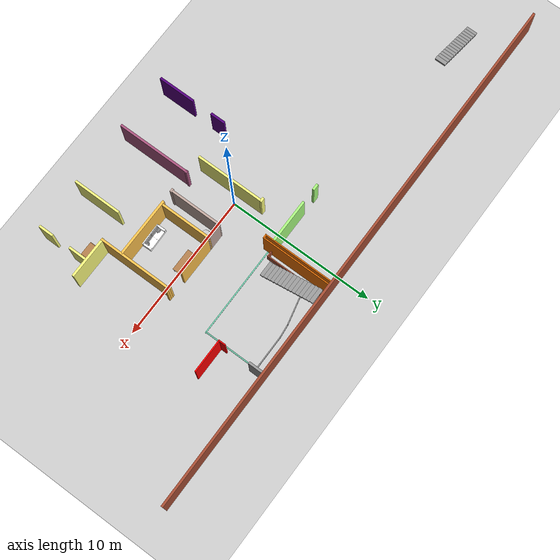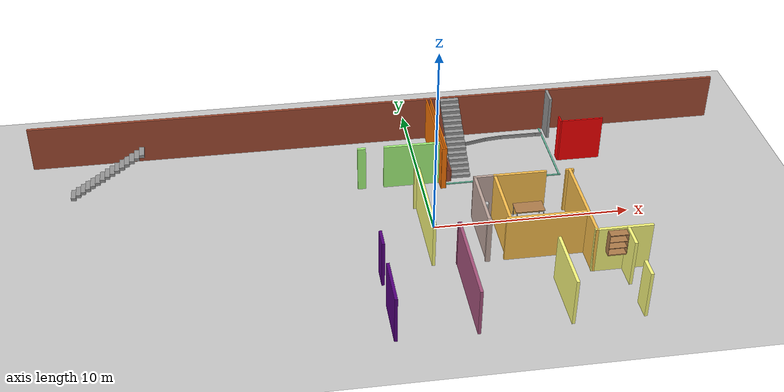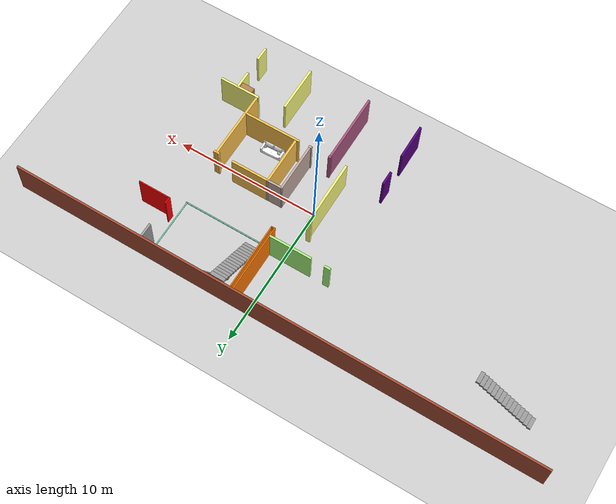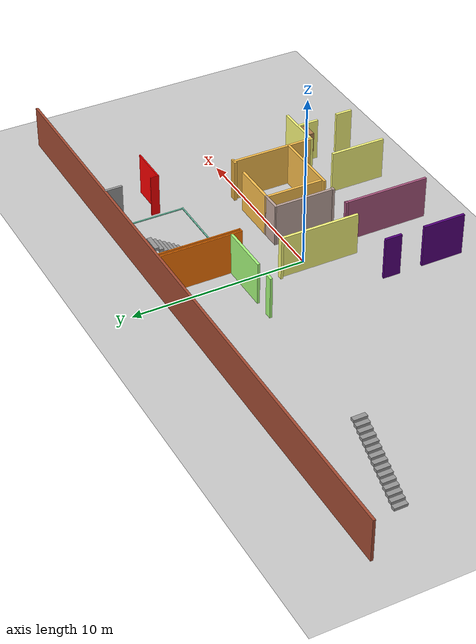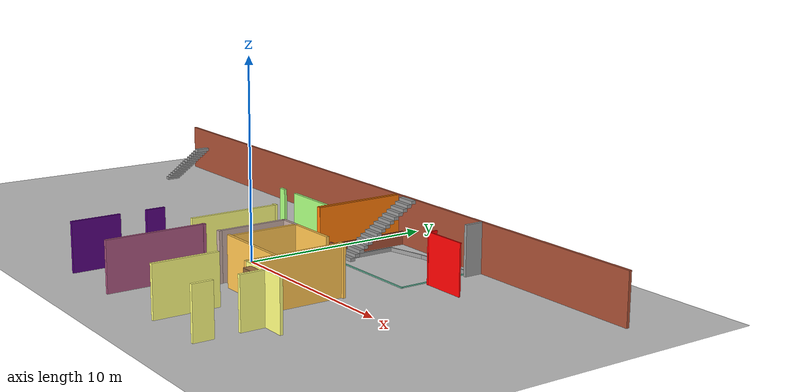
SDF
<sdf version="1.7">
 <world name="default">
  <model name="ground_plane">
   <static>1</static>
   <link name="link">
    <collision name="collision">
     <geometry><plane><normal>0 0 1</normal><size>100 100</size></plane></geometry>
     <surface>
      <contact><collide_bitmask>65535</collide_bitmask></contact>
      <friction><ode><mu>100</mu><mu2>50</mu2></ode></friction>
     </surface>
    </collision>
    <visual name="visual">
     <cast_shadows>0</cast_shadows>
     <geometry><plane><normal>0 0 1</normal><size>100 100</size></plane></geometry>
     <material>
      <script><uri>file://media/materials/scripts/gazebo.material</uri><name>Gazebo/Grey</name></script>
     </material>
    </visual>
   </link>
  </model>
  <model name="finalfinal">
   <pose>-1.52945 0.041943 0 0 -0 0</pose>
   <link name="Stairs_0">
    <visual name="Stairs_0_Visual_0">
     <pose>-16.4011 5.10556 0.083333 0 -0 1.5708</pose>
     <geometry><box><size>0.747 0.265533 0.166667</size></box></geometry>
     <material>
      <script><uri>file://media/materials/scripts/gazebo.material</uri><name>Gazebo/Grey</name></script>
      <ambient>1 1 1 1</ambient>
     </material>
     <meta><layer>0</layer></meta>
    </visual>
    <collision name="Stairs_0_Collision_0">
     <geometry><box><size>0.747 0.265533 0.166667</size></box></geometry>
     <pose>-16.4011 5.10556 0.083333 0 -0 1.5708</pose>
    </collision>
    <visual name="Stairs_0_Visual_1">
     <pose>-16.1355 5.10556 0.25 0 -0 1.5708</pose>
     <geometry><box><size>0.747 0.265533 0.166667</size></box></geometry>
     <material>
      <script><uri>file://media/materials/scripts/gazebo.material</uri><name>Gazebo/Grey</name></script>
      <ambient>1 1 1 1</ambient>
     </material>
     <meta><layer>0</layer></meta>
    </visual>
    <collision name="Stairs_0_Collision_1">
     <geometry><box><size>0.747 0.265533 0.166667</size></box></geometry>
     <pose>-16.1355 5.10556 0.25 0 -0 1.5708</pose>
    </collision>
    <visual name="Stairs_0_Visual_2">
     <pose>-15.87 5.10556 0.416667 0 -0 1.5708</pose>
     <geometry><box><size>0.747 0.265533 0.166667</size></box></geometry>
     <material>
      <script><uri>file://media/materials/scripts/gazebo.material</uri><name>Gazebo/Grey</name></script>
      <ambient>1 1 1 1</ambient>
     </material>
     <meta><layer>0</layer></meta>
    </visual>
    <collision name="Stairs_0_Collision_2">
     <geometry><box><size>0.747 0.265533 0.166667</size></box></geometry>
     <pose>-15.87 5.10556 0.416667 0 -0 1.5708</pose>
    </collision>
    <visual name="Stairs_0_Visual_3">
     <pose>-15.6045 5.10556 0.583333 0 -0 1.5708</pose>
     <geometry><box><size>0.747 0.265533 0.166667</size></box></geometry>
     <material>
      <script><uri>file://media/materials/scripts/gazebo.material</uri><name>Gazebo/Grey</name></script>
      <ambient>1 1 1 1</ambient>
     </material>
     <meta><layer>0</layer></meta>
    </visual>
    <collision name="Stairs_0_Collision_3">
     <geometry><box><size>0.747 0.265533 0.166667</size></box></geometry>
     <pose>-15.6045 5.10556 0.583333 0 -0 1.5708</pose>
    </collision>
    <visual name="Stairs_0_Visual_4">
     <pose>-15.3389 5.10556 0.75 0 -0 1.5708</pose>
     <geometry><box><size>0.747 0.265533 0.166667</size></box></geometry>
     <material>
      <script><uri>file://media/materials/scripts/gazebo.material</uri><name>Gazebo/Grey</name></script>
      <ambient>1 1 1 1</ambient>
     </material>
     <meta><layer>0</layer></meta>
    </visual>
    <collision name="Stairs_0_Collision_4">
     <geometry><box><size>0.747 0.265533 0.166667</size></box></geometry>
     <pose>-15.3389 5.10556 0.75 0 -0 1.5708</pose>
    </collision>
    <visual name="Stairs_0_Visual_5">
     <pose>-15.0734 5.10556 0.916667 0 -0 1.5708</pose>
     <geometry><box><size>0.747 0.265533 0.166667</size></box></geometry>
     <material>
      <script><uri>file://media/materials/scripts/gazebo.material</uri><name>Gazebo/Grey</name></script>
      <ambient>1 1 1 1</ambient>
     </material>
     <meta><layer>0</layer></meta>
    </visual>
    <collision name="Stairs_0_Collision_5">
     <geometry><box><size>0.747 0.265533 0.166667</size></box></geometry>
     <pose>-15.0734 5.10556 0.916667 0 -0 1.5708</pose>
    </collision>
    <visual name="Stairs_0_Visual_6">
     <pose>-14.8079 5.10556 1.08333 0 -0 1.5708</pose>
     <geometry><box><size>0.747 0.265533 0.166667</size></box></geometry>
     <material>
      <script><uri>file://media/materials/scripts/gazebo.material</uri><name>Gazebo/Grey</name></script>
      <ambient>1 1 1 1</ambient>
     </material>
     <meta><layer>0</layer></meta>
    </visual>
    <collision name="Stairs_0_Collision_6">
     <geometry><box><size>0.747 0.265533 0.166667</size></box></geometry>
     <pose>-14.8079 5.10556 1.08333 0 -0 1.5708</pose>
    </collision>
    <visual name="Stairs_0_Visual_7">
     <pose>-14.5423 5.10556 1.25 0 -0 1.5708</pose>
     <geometry><box><size>0.747 0.265533 0.166667</size></box></geometry>
     <material>
      <script><uri>file://media/materials/scripts/gazebo.material</uri><name>Gazebo/Grey</name></script>
      <ambient>1 1 1 1</ambient>
     </material>
     <meta><layer>0</layer></meta>
    </visual>
    <collision name="Stairs_0_Collision_7">
     <geometry><box><size>0.747 0.265533 0.166667</size></box></geometry>
     <pose>-14.5423 5.10556 1.25 0 -0 1.5708</pose>
    </collision>
    <visual name="Stairs_0_Visual_8">
     <pose>-14.2768 5.10556 1.41667 0 -0 1.5708</pose>
     <geometry><box><size>0.747 0.265533 0.166667</size></box></geometry>
     <material>
      <script><uri>file://media/materials/scripts/gazebo.material</uri><name>Gazebo/Grey</name></script>
      <ambient>1 1 1 1</ambient>
     </material>
     <meta><layer>0</layer></meta>
    </visual>
    <collision name="Stairs_0_Collision_8">
     <geometry><box><size>0.747 0.265533 0.166667</size></box></geometry>
     <pose>-14.2768 5.10556 1.41667 0 -0 1.5708</pose>
    </collision>
    <visual name="Stairs_0_Visual_9">
     <pose>-14.0113 5.10556 1.58333 0 -0 1.5708</pose>
     <geometry><box><size>0.747 0.265533 0.166667</size></box></geometry>
     <material>
      <script><uri>file://media/materials/scripts/gazebo.material</uri><name>Gazebo/Grey</name></script>
      <ambient>1 1 1 1</ambient>
     </material>
     <meta><layer>0</layer></meta>
    </visual>
    <collision name="Stairs_0_Collision_9">
     <geometry><box><size>0.747 0.265533 0.166667</size></box></geometry>
     <pose>-14.0113 5.10556 1.58333 0 -0 1.5708</pose>
    </collision>
    <visual name="Stairs_0_Visual_10">
     <pose>-13.7457 5.10556 1.75 0 -0 1.5708</pose>
     <geometry><box><size>0.747 0.265533 0.166667</size></box></geometry>
     <material>
      <script><uri>file://media/materials/scripts/gazebo.material</uri><name>Gazebo/Grey</name></script>
      <ambient>1 1 1 1</ambient>
     </material>
     <meta><layer>0</layer></meta>
    </visual>
    <collision name="Stairs_0_Collision_10">
     <geometry><box><size>0.747 0.265533 0.166667</size></box></geometry>
     <pose>-13.7457 5.10556 1.75 0 -0 1.5708</pose>
    </collision>
    <visual name="Stairs_0_Visual_11">
     <pose>-13.4802 5.10556 1.91667 0 -0 1.5708</pose>
     <geometry><box><size>0.747 0.265533 0.166667</size></box></geometry>
     <material>
      <script><uri>file://media/materials/scripts/gazebo.material</uri><name>Gazebo/Grey</name></script>
      <ambient>1 1 1 1</ambient>
     </material>
     <meta><layer>0</layer></meta>
    </visual>
    <collision name="Stairs_0_Collision_11">
     <geometry><box><size>0.747 0.265533 0.166667</size></box></geometry>
     <pose>-13.4802 5.10556 1.91667 0 -0 1.5708</pose>
    </collision>
    <visual name="Stairs_0_Visual_12">
     <pose>-13.2147 5.10556 2.08333 0 -0 1.5708</pose>
     <geometry><box><size>0.747 0.265533 0.166667</size></box></geometry>
     <material>
      <script><uri>file://media/materials/scripts/gazebo.material</uri><name>Gazebo/Grey</name></script>
      <ambient>1 1 1 1</ambient>
     </material>
     <meta><layer>0</layer></meta>
    </visual>
    <collision name="Stairs_0_Collision_12">
     <geometry><box><size>0.747 0.265533 0.166667</size></box></geometry>
     <pose>-13.2147 5.10556 2.08333 0 -0 1.5708</pose>
    </collision>
    <visual name="Stairs_0_Visual_13">
     <pose>-12.9491 5.10556 2.25 0 -0 1.5708</pose>
     <geometry><box><size>0.747 0.265533 0.166667</size></box></geometry>
     <material>
      <script><uri>file://media/materials/scripts/gazebo.material</uri><name>Gazebo/Grey</name></script>
      <ambient>1 1 1 1</ambient>
     </material>
     <meta><layer>0</layer></meta>
    </visual>
    <collision name="Stairs_0_Collision_13">
     <geometry><box><size>0.747 0.265533 0.166667</size></box></geometry>
     <pose>-12.9491 5.10556 2.25 0 -0 1.5708</pose>
    </collision>
    <visual name="Stairs_0_Visual_14">
     <pose>-12.6836 5.10556 2.41667 0 -0 1.5708</pose>
     <geometry><box><size>0.747 0.265533 0.166667</size></box></geometry>
     <material>
      <script><uri>file://media/materials/scripts/gazebo.material</uri><name>Gazebo/Grey</name></script>
      <ambient>1 1 1 1</ambient>
     </material>
     <meta><layer>0</layer></meta>
    </visual>
    <collision name="Stairs_0_Collision_14">
     <geometry><box><size>0.747 0.265533 0.166667</size></box></geometry>
     <pose>-12.6836 5.10556 2.41667 0 -0 1.5708</pose>
    </collision>
   </link>
   <link name="Stairs_1">
    <visual name="Stairs_1_Visual_0">
     <pose>3.69214 4.04361 0.083333 0 -0 -3.14159</pose>
     <geometry><box><size>1 0.2592 0.166667</size></box></geometry>
     <material>
      <script><uri>file://media/materials/scripts/gazebo.material</uri><name>Gazebo/Grey</name></script>
      <ambient>1 1 1 1</ambient>
     </material>
     <meta><layer>0</layer></meta>
    </visual>
    <collision name="Stairs_1_Collision_0">
     <geometry><box><size>1 0.2592 0.166667</size></box></geometry>
     <pose>3.69214 4.04361 0.083333 0 -0 -3.14159</pose>
    </collision>
    <visual name="Stairs_1_Visual_1">
     <pose>3.69214 4.30281 0.25 0 -0 -3.14159</pose>
     <geometry><box><size>1 0.2592 0.166667</size></box></geometry>
     <material>
      <script><uri>file://media/materials/scripts/gazebo.material</uri><name>Gazebo/Grey</name></script>
      <ambient>1 1 1 1</ambient>
     </material>
     <meta><layer>0</layer></meta>
    </visual>
    <collision name="Stairs_1_Collision_1">
     <geometry><box><size>1 0.2592 0.166667</size></box></geometry>
     <pose>3.69214 4.30281 0.25 0 -0 -3.14159</pose>
    </collision>
    <visual name="Stairs_1_Visual_2">
     <pose>3.69214 4.56201 0.416667 0 -0 -3.14159</pose>
     <geometry><box><size>1 0.2592 0.166667</size></box></geometry>
     <material>
      <script><uri>file://media/materials/scripts/gazebo.material</uri><name>Gazebo/Grey</name></script>
      <ambient>1 1 1 1</ambient>
     </material>
     <meta><layer>0</layer></meta>
    </visual>
    <collision name="Stairs_1_Collision_2">
     <geometry><box><size>1 0.2592 0.166667</size></box></geometry>
     <pose>3.69214 4.56201 0.416667 0 -0 -3.14159</pose>
    </collision>
    <visual name="Stairs_1_Visual_3">
     <pose>3.69214 4.82121 0.583333 0 -0 -3.14159</pose>
     <geometry><box><size>1 0.2592 0.166667</size></box></geometry>
     <material>
      <script><uri>file://media/materials/scripts/gazebo.material</uri><name>Gazebo/Grey</name></script>
      <ambient>1 1 1 1</ambient>
     </material>
     <meta><layer>0</layer></meta>
    </visual>
    <collision name="Stairs_1_Collision_3">
     <geometry><box><size>1 0.2592 0.166667</size></box></geometry>
     <pose>3.69214 4.82121 0.583333 0 -0 -3.14159</pose>
    </collision>
    <visual name="Stairs_1_Visual_4">
     <pose>3.69214 5.08042 0.75 0 -0 -3.14159</pose>
     <geometry><box><size>1 0.2592 0.166667</size></box></geometry>
     <material>
      <script><uri>file://media/materials/scripts/gazebo.material</uri><name>Gazebo/Grey</name></script>
      <ambient>1 1 1 1</ambient>
     </material>
     <meta><layer>0</layer></meta>
    </visual>
    <collision name="Stairs_1_Collision_4">
     <geometry><box><size>1 0.2592 0.166667</size></box></geometry>
     <pose>3.69214 5.08042 0.75 0 -0 -3.14159</pose>
    </collision>
    <visual name="Stairs_1_Visual_5">
     <pose>3.69214 5.33962 0.916667 0 -0 -3.14159</pose>
     <geometry><box><size>1 0.2592 0.166667</size></box></geometry>
     <material>
      <script><uri>file://media/materials/scripts/gazebo.material</uri><name>Gazebo/Grey</name></script>
      <ambient>1 1 1 1</ambient>
     </material>
     <meta><layer>0</layer></meta>
    </visual>
    <collision name="Stairs_1_Collision_5">
     <geometry><box><size>1 0.2592 0.166667</size></box></geometry>
     <pose>3.69214 5.33962 0.916667 0 -0 -3.14159</pose>
    </collision>
    <visual name="Stairs_1_Visual_6">
     <pose>3.69214 5.59882 1.08333 0 -0 -3.14159</pose>
     <geometry><box><size>1 0.2592 0.166667</size></box></geometry>
     <material>
      <script><uri>file://media/materials/scripts/gazebo.material</uri><name>Gazebo/Grey</name></script>
      <ambient>1 1 1 1</ambient>
     </material>
     <meta><layer>0</layer></meta>
    </visual>
    <collision name="Stairs_1_Collision_6">
     <geometry><box><size>1 0.2592 0.166667</size></box></geometry>
     <pose>3.69214 5.59882 1.08333 0 -0 -3.14159</pose>
    </collision>
    <visual name="Stairs_1_Visual_7">
     <pose>3.69214 5.85801 1.25 0 -0 -3.14159</pose>
     <geometry><box><size>1 0.2592 0.166667</size></box></geometry>
     <material>
      <script><uri>file://media/materials/scripts/gazebo.material</uri><name>Gazebo/Grey</name></script>
      <ambient>1 1 1 1</ambient>
     </material>
     <meta><layer>0</layer></meta>
    </visual>
    <collision name="Stairs_1_Collision_7">
     <geometry><box><size>1 0.2592 0.166667</size></box></geometry>
     <pose>3.69214 5.85801 1.25 0 -0 -3.14159</pose>
    </collision>
    <visual name="Stairs_1_Visual_8">
     <pose>3.69214 6.11721 1.41667 0 -0 -3.14159</pose>
     <geometry><box><size>1 0.2592 0.166667</size></box></geometry>
     <material>
      <script><uri>file://media/materials/scripts/gazebo.material</uri><name>Gazebo/Grey</name></script>
      <ambient>1 1 1 1</ambient>
     </material>
     <meta><layer>0</layer></meta>
    </visual>
    <collision name="Stairs_1_Collision_8">
     <geometry><box><size>1 0.2592 0.166667</size></box></geometry>
     <pose>3.69214 6.11721 1.41667 0 -0 -3.14159</pose>
    </collision>
    <visual name="Stairs_1_Visual_9">
     <pose>3.69214 6.37641 1.58333 0 -0 -3.14159</pose>
     <geometry><box><size>1 0.2592 0.166667</size></box></geometry>
     <material>
      <script><uri>file://media/materials/scripts/gazebo.material</uri><name>Gazebo/Grey</name></script>
      <ambient>1 1 1 1</ambient>
     </material>
     <meta><layer>0</layer></meta>
    </visual>
    <collision name="Stairs_1_Collision_9">
     <geometry><box><size>1 0.2592 0.166667</size></box></geometry>
     <pose>3.69214 6.37641 1.58333 0 -0 -3.14159</pose>
    </collision>
    <visual name="Stairs_1_Visual_10">
     <pose>3.69214 6.63561 1.75 0 -0 -3.14159</pose>
     <geometry><box><size>1 0.2592 0.166667</size></box></geometry>
     <material>
      <script><uri>file://media/materials/scripts/gazebo.material</uri><name>Gazebo/Grey</name></script>
      <ambient>1 1 1 1</ambient>
     </material>
     <meta><layer>0</layer></meta>
    </visual>
    <collision name="Stairs_1_Collision_10">
     <geometry><box><size>1 0.2592 0.166667</size></box></geometry>
     <pose>3.69214 6.63561 1.75 0 -0 -3.14159</pose>
    </collision>
    <visual name="Stairs_1_Visual_11">
     <pose>3.69214 6.89482 1.91667 0 -0 -3.14159</pose>
     <geometry><box><size>1 0.2592 0.166667</size></box></geometry>
     <material>
      <script><uri>file://media/materials/scripts/gazebo.material</uri><name>Gazebo/Grey</name></script>
      <ambient>1 1 1 1</ambient>
     </material>
     <meta><layer>0</layer></meta>
    </visual>
    <collision name="Stairs_1_Collision_11">
     <geometry><box><size>1 0.2592 0.166667</size></box></geometry>
     <pose>3.69214 6.89482 1.91667 0 -0 -3.14159</pose>
    </collision>
    <visual name="Stairs_1_Visual_12">
     <pose>3.69214 7.15402 2.08333 0 -0 -3.14159</pose>
     <geometry><box><size>1 0.2592 0.166667</size></box></geometry>
     <material>
      <script><uri>file://media/materials/scripts/gazebo.material</uri><name>Gazebo/Grey</name></script>
      <ambient>1 1 1 1</ambient>
     </material>
     <meta><layer>0</layer></meta>
    </visual>
    <collision name="Stairs_1_Collision_12">
     <geometry><box><size>1 0.2592 0.166667</size></box></geometry>
     <pose>3.69214 7.15402 2.08333 0 -0 -3.14159</pose>
    </collision>
    <visual name="Stairs_1_Visual_13">
     <pose>3.69214 7.41322 2.25 0 -0 -3.14159</pose>
     <geometry><box><size>1 0.2592 0.166667</size></box></geometry>
     <material>
      <script><uri>file://media/materials/scripts/gazebo.material</uri><name>Gazebo/Grey</name></script>
      <ambient>1 1 1 1</ambient>
     </material>
     <meta><layer>0</layer></meta>
    </visual>
    <collision name="Stairs_1_Collision_13">
     <geometry><box><size>1 0.2592 0.166667</size></box></geometry>
     <pose>3.69214 7.41322 2.25 0 -0 -3.14159</pose>
    </collision>
    <visual name="Stairs_1_Visual_14">
     <pose>3.69214 7.67241 2.41667 0 -0 -3.14159</pose>
     <geometry><box><size>1 0.2592 0.166667</size></box></geometry>
     <material>
      <script><uri>file://media/materials/scripts/gazebo.material</uri><name>Gazebo/Grey</name></script>
      <ambient>1 1 1 1</ambient>
     </material>
     <meta><layer>0</layer></meta>
    </visual>
    <collision name="Stairs_1_Collision_14">
     <geometry><box><size>1 0.2592 0.166667</size></box></geometry>
     <pose>3.69214 7.67241 2.41667 0 -0 -3.14159</pose>
    </collision>
   </link>
   <link name="Wall_0">
    <collision name="Wall_0_Collision">
     <geometry><box><size>37.14 0.15 2.5</size></box></geometry>
     <pose>0 0 1.25 0 -0 0</pose>
    </collision>
    <visual name="Wall_0_Visual">
     <pose>0 0 1.25 0 -0 0</pose>
     <geometry><box><size>37.14 0.15 2.5</size></box></geometry>
     <material>
      <script><uri>file://media/materials/scripts/gazebo.material</uri><name>Gazebo/Bricks</name></script>
      <ambient>1 1 1 1</ambient>
     </material>
     <meta><layer>0</layer></meta>
    </visual>
    <pose>-0.072531 7.91705 0 0 -0 0</pose>
   </link>
   <link name="Wall_101">
    <collision name="Wall_101_Collision">
     <geometry><box><size>0.39 0.07 0.7</size></box></geometry>
     <pose>0 0 0.35 0 -0 0</pose>
    </collision>
    <visual name="Wall_101_Visual">
     <pose>0 0 0.35 0 -0 0</pose>
     <geometry><box><size>0.39 0.07 0.7</size></box></geometry>
     <material>
      <script><uri>file://media/materials/scripts/gazebo.material</uri><name>Gazebo/Bricks</name></script>
      <ambient>1 1 1 1</ambient>
     </material>
     <meta><layer>0</layer></meta>
    </visual>
    <pose>2.93345 3.70306 0 0 -0 0</pose>
   </link>
   <link name="Wall_103">
    <collision name="Wall_103_Collision">
     <geometry><box><size>4.25 0.07 0.7</size></box></geometry>
     <pose>0 0 0.35 0 -0 0</pose>
    </collision>
    <visual name="Wall_103_Visual">
     <pose>0 0 0.35 0 -0 0</pose>
     <geometry><box><size>4.25 0.07 0.7</size></box></geometry>
     <material>
      <script><uri>file://media/materials/scripts/gazebo.material</uri><name>Gazebo/Bricks</name></script>
      <ambient>1 1 1 1</ambient>
     </material>
     <meta><layer>0</layer></meta>
    </visual>
    <pose>3.09345 5.79306 0 0 -0 1.5708</pose>
   </link>
   <link name="Wall_105">
    <collision name="Wall_105_Collision">
     <geometry><box><size>1 0.15 2.5</size></box></geometry>
     <pose>0 0 1.25 0 -0 0</pose>
    </collision>
    <visual name="Wall_105_Visual">
     <pose>0 0 1.25 0 -0 0</pose>
     <geometry><box><size>1 0.15 2.5</size></box></geometry>
     <material>
      <script><uri>file://media/materials/scripts/gazebo.material</uri><name>Gazebo/Grey</name></script>
      <ambient>1 1 1 1</ambient>
     </material>
     <meta><layer>0</layer></meta>
    </visual>
    <pose>9.13765 7.40657 0 0 -0 -1.5708</pose>
   </link>
   <link name="Wall_113">
    <collision name="Wall_113_Collision">
     <geometry><box><size>0.5 0.08 2.5</size></box></geometry>
     <pose>0 0 1.25 0 -0 0</pose>
    </collision>
    <visual name="Wall_113_Visual">
     <pose>0 0 1.25 0 -0 0</pose>
     <geometry><box><size>0.5 0.08 2.5</size></box></geometry>
     <material>
      <script><uri>file://media/materials/scripts/gazebo.material</uri><name>Gazebo/Grey</name></script>
      <ambient>1 0 0 1</ambient>
     </material>
     <meta><layer>0</layer></meta>
    </visual>
    <pose>9.14236 4.97184 0 0 -0 1.5708</pose>
   </link>
   <link name="Wall_119">
    <collision name="Wall_119_Collision">
     <geometry><box><size>2.25 0.08 2.5</size></box></geometry>
     <pose>0 0 1.25 0 -0 0</pose>
    </collision>
    <visual name="Wall_119_Visual">
     <pose>0 0 1.25 0 -0 0</pose>
     <geometry><box><size>2.25 0.08 2.5</size></box></geometry>
     <material>
      <script><uri>file://media/materials/scripts/gazebo.material</uri><name>Gazebo/Grey</name></script>
      <ambient>1 0 0 1</ambient>
     </material>
     <meta><layer>0</layer></meta>
    </visual>
    <pose>10.2699 4.7714 0 0 -0 0</pose>
   </link>
   <link name="Wall_129">
    <collision name="Wall_129_Collision">
     <geometry><box><size>4.5 0.08 0.05</size></box></geometry>
     <pose>0 0 0.025 0 -0 0</pose>
    </collision>
    <visual name="Wall_129_Visual">
     <pose>0 0 0.025 0 -0 0</pose>
     <geometry><box><size>4.5 0.08 0.05</size></box></geometry>
     <material>
      <script><uri>file://media/materials/scripts/gazebo.material</uri><name>Gazebo/Grey</name></script>
      <ambient>0.435294 0.796078 0.67451 1</ambient>
     </material>
     <meta><layer>0</layer></meta>
    </visual>
    <pose>8.88409 5.6843 0 0 -0 -1.5708</pose>
   </link>
   <link name="Wall_131">
    <collision name="Wall_131_Collision">
     <geometry><box><size>6.2 0.08 0.05</size></box></geometry>
     <pose>0 0 0.025 0 -0 0</pose>
    </collision>
    <visual name="Wall_131_Visual">
     <pose>0 0 0.025 0 -0 0</pose>
     <geometry><box><size>6.2 0.08 0.05</size></box></geometry>
     <material>
      <script><uri>file://media/materials/scripts/gazebo.material</uri><name>Gazebo/Grey</name></script>
      <ambient>0.435294 0.796078 0.67451 1</ambient>
     </material>
     <meta><layer>0</layer></meta>
    </visual>
    <pose>5.85445 3.44206 0 0 -0 0</pose>
   </link>
   <link name="Wall_133">
    <collision name="Wall_133_Collision">
     <geometry><box><size>0.35 0.07 0.2</size></box></geometry>
     <pose>0 0 0.1 0 -0 0</pose>
    </collision>
    <visual name="Wall_133_Visual">
     <pose>0 0 0.1 0 -0 0</pose>
     <geometry><box><size>0.35 0.07 0.2</size></box></geometry>
     <material>
      <script><uri>file://media/materials/scripts/gazebo.material</uri><name>Gazebo/Grey</name></script>
      <ambient>1 1 1 1</ambient>
     </material>
     <meta><layer>0</layer></meta>
    </visual>
    <pose>8.68868 7.17206 0 0 -0 3.14159</pose>
   </link>
   <link name="Wall_134">
    <collision name="Wall_134_Collision">
     <geometry><box><size>2.06434 0.06 0.2</size></box></geometry>
     <pose>0 0 0.1 0 -0 0</pose>
    </collision>
    <visual name="Wall_134_Visual">
     <pose>0 0 0.1 0 -0 0</pose>
     <geometry><box><size>2.06434 0.06 0.2</size></box></geometry>
     <material>
      <script><uri>file://media/materials/scripts/gazebo.material</uri><name>Gazebo/Grey</name></script>
      <ambient>1 1 1 1</ambient>
     </material>
     <meta><layer>0</layer></meta>
    </visual>
    <pose>7.55062 7.17206 0 0 -0 3.14159</pose>
   </link>
   <link name="Wall_135">
    <collision name="Wall_135_Collision">
     <geometry><box><size>0.942866 0.06 0.2</size></box></geometry>
     <pose>0 0 0.1 0 -0 0</pose>
    </collision>
    <visual name="Wall_135_Visual">
     <pose>0 0 0.1 0 -0 0</pose>
     <geometry><box><size>0.942866 0.06 0.2</size></box></geometry>
     <material>
      <script><uri>file://media/materials/scripts/gazebo.material</uri><name>Gazebo/Grey</name></script>
      <ambient>1 1 1 1</ambient>
     </material>
     <meta><layer>0</layer></meta>
    </visual>
    <pose>6.10945 7.12456 0 0 -0 -3.03381</pose>
   </link>
   <link name="Wall_136">
    <collision name="Wall_136_Collision">
     <geometry><box><size>2.01942 0.06 0.2</size></box></geometry>
     <pose>0 0 0.1 0 -0 0</pose>
    </collision>
    <visual name="Wall_136_Visual">
     <pose>0 0 0.1 0 -0 0</pose>
     <geometry><box><size>2.01942 0.06 0.2</size></box></geometry>
     <material>
      <script><uri>file://media/materials/scripts/gazebo.material</uri><name>Gazebo/Grey</name></script>
      <ambient>1 1 1 1</ambient>
     </material>
     <meta><layer>0</layer></meta>
    </visual>
    <pose>4.71645 6.85406 0 0 -0 -2.91196</pose>
   </link>
   <link name="Wall_138">
    <collision name="Wall_138_Collision">
     <geometry><box><size>2.38821 0.07 0.2</size></box></geometry>
     <pose>0 0 0.1 0 -0 0</pose>
    </collision>
    <visual name="Wall_138_Visual">
     <pose>0 0 0.1 0 -0 0</pose>
     <geometry><box><size>2.38821 0.07 0.2</size></box></geometry>
     <material>
      <script><uri>file://media/materials/scripts/gazebo.material</uri><name>Gazebo/Grey</name></script>
      <ambient>1 1 1 1</ambient>
     </material>
     <meta><layer>0</layer></meta>
    </visual>
    <pose>3.76245 5.47195 0 0 -0 -1.5708</pose>
   </link>
   <link name="Wall_140">
    <collision name="Wall_140_Collision">
     <geometry><box><size>0.67 0.07 0.2</size></box></geometry>
     <pose>0 0 0.1 0 -0 0</pose>
    </collision>
    <visual name="Wall_140_Visual">
     <pose>0 0 0.1 0 -0 0</pose>
     <geometry><box><size>0.67 0.07 0.2</size></box></geometry>
     <material>
      <script><uri>file://media/materials/scripts/gazebo.material</uri><name>Gazebo/Grey</name></script>
      <ambient>1 1 1 1</ambient>
     </material>
     <meta><layer>0</layer></meta>
    </visual>
    <pose>3.46245 4.30167 0 0 -0 3.14159</pose>
   </link>
   <link name="Wall_201">
    <collision name="Wall_201_Collision">
     <geometry><box><size>4.6 0.15 2.5</size></box></geometry>
     <pose>0 0 1.25 0 -0 0</pose>
    </collision>
    <visual name="Wall_201_Visual">
     <pose>0 0 1.25 0 -0 0</pose>
     <geometry><box><size>4.6 0.15 2.5</size></box></geometry>
     <material>
      <script><uri>file://media/materials/scripts/gazebo.material</uri><name>Gazebo/Grey</name></script>
      <ambient>1 1 0.498039 1</ambient>
     </material>
     <meta><layer>0</layer></meta>
    </visual>
    <pose>0.991225 -0.671862 0 0 -0 1.5708</pose>
   </link>
   <link name="Wall_216">
    <collision name="Wall_216_Collision">
     <geometry><box><size>1.25 0.15 2.5</size></box></geometry>
     <pose>0 0 1.25 0 -0 0</pose>
    </collision>
    <visual name="Wall_216_Visual">
     <pose>0 0 1.25 0 -0 0</pose>
     <geometry><box><size>1.25 0.15 2.5</size></box></geometry>
     <material>
      <script><uri>file://media/materials/scripts/gazebo.material</uri><name>Gazebo/Grey</name></script>
      <ambient>1 1 0.498039 1</ambient>
     </material>
     <meta><layer>0</layer></meta>
    </visual>
    <pose>9.94867 -5.00705 0 0 -0 -1.5708</pose>
   </link>
   <link name="Wall_218">
    <collision name="Wall_218_Collision">
     <geometry><box><size>1 0.15 2.5</size></box></geometry>
     <pose>0 0 1.25 0 -0 0</pose>
    </collision>
    <visual name="Wall_218_Visual">
     <pose>0 0 1.25 0 -0 0</pose>
     <geometry><box><size>1 0.15 2.5</size></box></geometry>
     <material>
      <script><uri>file://media/materials/scripts/gazebo.material</uri><name>Gazebo/Grey</name></script>
      <ambient>1 1 0.498039 1</ambient>
     </material>
     <meta><layer>0</layer></meta>
    </visual>
    <pose>9.97757 -7.35626 0 0 -0 1.5708</pose>
   </link>
   <link name="Wall_222">
    <collision name="Wall_222_Collision">
     <geometry><box><size>2.83264 0.15 2.5</size></box></geometry>
     <pose>0 0 1.25 0 -0 0</pose>
    </collision>
    <visual name="Wall_222_Visual">
     <pose>0 0 1.25 0 -0 0</pose>
     <geometry><box><size>2.83264 0.15 2.5</size></box></geometry>
     <material>
      <script><uri>file://media/materials/scripts/gazebo.material</uri><name>Gazebo/Grey</name></script>
      <ambient>1 1 0.498039 1</ambient>
     </material>
     <meta><layer>0</layer></meta>
    </visual>
    <pose>9.7636 -4.37033 0 0 -0 3.14159</pose>
   </link>
   <link name="Wall_224">
    <collision name="Wall_224_Collision">
     <geometry><box><size>5 0.15 2.5</size></box></geometry>
     <pose>0 0 1.25 0 -0 0</pose>
    </collision>
    <visual name="Wall_224_Visual">
     <pose>0 0 1.25 0 -0 0</pose>
     <geometry><box><size>5 0.15 2.5</size></box></geometry>
     <material>
      <script><uri>file://media/materials/scripts/gazebo.material</uri><name>Gazebo/Grey</name></script>
      <ambient>1 0.764706 0.305882 1</ambient>
     </material>
     <meta><layer>0</layer></meta>
    </visual>
    <pose>8.43881 -1.94533 0 0 -0 1.5708</pose>
   </link>
   <link name="Wall_236">
    <collision name="Wall_236_Collision">
     <geometry><box><size>0.4 0.15 2.5</size></box></geometry>
     <pose>0 0 1.25 0 -0 0</pose>
    </collision>
    <visual name="Wall_236_Visual">
     <pose>0 0 1.25 0 -0 0</pose>
     <geometry><box><size>0.4 0.15 2.5</size></box></geometry>
     <material>
      <script><uri>file://media/materials/scripts/gazebo.material</uri><name>Gazebo/Grey</name></script>
      <ambient>1 0.764706 0.305882 1</ambient>
     </material>
     <meta><layer>0</layer></meta>
    </visual>
    <pose>8.44017 0.478905 0 0 -0 3.14159</pose>
   </link>
   <link name="Wall_244">
    <collision name="Wall_244_Collision">
     <geometry><box><size>3.25 0.15 2.5</size></box></geometry>
     <pose>0 0 1.25 0 -0 0</pose>
    </collision>
    <visual name="Wall_244_Visual">
     <pose>0 0 1.25 0 -0 0</pose>
     <geometry><box><size>3.25 0.15 2.5</size></box></geometry>
     <material>
      <script><uri>file://media/materials/scripts/gazebo.material</uri><name>Gazebo/Grey</name></script>
      <ambient>1 1 0.498039 1</ambient>
     </material>
     <meta><layer>0</layer></meta>
    </visual>
    <pose>6.55964 -6.27141 0 0 -0 1.5708</pose>
   </link>
   <link name="Wall_248">
    <collision name="Wall_248_Collision">
     <geometry><box><size>5 0.15 2.5</size></box></geometry>
     <pose>0 0 1.25 0 -0 0</pose>
    </collision>
    <visual name="Wall_248_Visual">
     <pose>0 0 1.25 0 -0 0</pose>
     <geometry><box><size>5 0.15 2.5</size></box></geometry>
     <material>
      <script><uri>file://media/materials/scripts/gazebo.material</uri><name>Gazebo/Grey</name></script>
      <ambient>0.666667 0.333333 0.498039 1</ambient>
     </material>
     <meta><layer>0</layer></meta>
    </visual>
    <pose>2.19071 -5.44502 0 0 -0 1.5708</pose>
   </link>
   <link name="Wall_250">
    <collision name="Wall_250_Collision">
     <geometry><box><size>0.2 0.15 2.5</size></box></geometry>
     <pose>0 0 1.25 0 -0 0</pose>
    </collision>
    <visual name="Wall_250_Visual">
     <pose>0 0 1.25 0 -0 0</pose>
     <geometry><box><size>0.2 0.15 2.5</size></box></geometry>
     <material>
      <script><uri>file://media/materials/scripts/gazebo.material</uri><name>Gazebo/Grey</name></script>
      <ambient>0.666667 0.333333 0.498039 1</ambient>
     </material>
     <meta><layer>0</layer></meta>
    </visual>
    <pose>2.19587 -2.97897 0 0 -0 3.14159</pose>
   </link>
   <link name="Wall_252">
    <collision name="Wall_252_Collision">
     <geometry><box><size>3.5 0.15 2.5</size></box></geometry>
     <pose>0 0 1.25 0 -0 0</pose>
    </collision>
    <visual name="Wall_252_Visual">
     <pose>0 0 1.25 0 -0 0</pose>
     <geometry><box><size>3.5 0.15 2.5</size></box></geometry>
     <material>
      <script><uri>file://media/materials/scripts/gazebo.material</uri><name>Gazebo/Grey</name></script>
      <ambient>0.760784 0.662745 0.627451 1</ambient>
     </material>
     <meta><layer>0</layer></meta>
    </visual>
    <pose>3.63101 -1.16821 0 0 -0 1.5708</pose>
   </link>
   <link name="Wall_258">
    <collision name="Wall_258_Collision">
     <geometry><box><size>3.45 0.15 2.5</size></box></geometry>
     <pose>0 0 1.25 0 -0 0</pose>
    </collision>
    <visual name="Wall_258_Visual">
     <pose>0 0 1.25 0 -0 0</pose>
     <geometry><box><size>3.45 0.15 2.5</size></box></geometry>
     <material>
      <script><uri>file://media/materials/scripts/gazebo.material</uri><name>Gazebo/Grey</name></script>
      <ambient>1 0.764706 0.305882 1</ambient>
     </material>
     <meta><layer>0</layer></meta>
    </visual>
    <pose>4.63575 -1.13461 0 0 -0 -1.5708</pose>
   </link>
   <link name="Wall_260">
    <collision name="Wall_260_Collision">
     <geometry><box><size>2.7 0.15 2.5</size></box></geometry>
     <pose>0 0 1.25 0 -0 0</pose>
    </collision>
    <visual name="Wall_260_Visual">
     <pose>0 0 1.25 0 -0 0</pose>
     <geometry><box><size>2.7 0.15 2.5</size></box></geometry>
     <material>
      <script><uri>file://media/materials/scripts/gazebo.material</uri><name>Gazebo/Grey</name></script>
      <ambient>1 0.764706 0.305882 1</ambient>
     </material>
     <meta><layer>0</layer></meta>
    </visual>
    <pose>5.91075 0.515386 0 0 -0 0</pose>
   </link>
   <link name="Wall_262">
    <collision name="Wall_262_Collision">
     <geometry><box><size>4 0.15 2.5</size></box></geometry>
     <pose>0 0 1.25 0 -0 0</pose>
    </collision>
    <visual name="Wall_262_Visual">
     <pose>0 0 1.25 0 -0 0</pose>
     <geometry><box><size>4 0.15 2.5</size></box></geometry>
     <material>
      <script><uri>file://media/materials/scripts/gazebo.material</uri><name>Gazebo/Grey</name></script>
      <ambient>1 0.764706 0.305882 1</ambient>
     </material>
     <meta><layer>0</layer></meta>
    </visual>
    <pose>6.43185 -2.94596 0 0 -0 0</pose>
   </link>
   <link name="Wall_264">
    <collision name="Wall_264_Collision">
     <geometry><box><size>1.15476 0.15 2.5</size></box></geometry>
     <pose>0 0 1.25 0 -0 0</pose>
    </collision>
    <visual name="Wall_264_Visual">
     <pose>0 0 1.25 0 -0 0</pose>
     <geometry><box><size>1.15476 0.15 2.5</size></box></geometry>
     <material>
      <script><uri>file://media/materials/scripts/gazebo.material</uri><name>Gazebo/Grey</name></script>
      <ambient>0.760784 0.662745 0.627451 1</ambient>
     </material>
     <meta><layer>0</layer></meta>
    </visual>
    <pose>4.13338 0.511086 0 0 -0 0.008559</pose>
   </link>
   <link name="Wall_270">
    <collision name="Wall_270_Collision">
     <geometry><box><size>0.24 0.15 2.5</size></box></geometry>
     <pose>0 0 1.25 0 -0 0</pose>
    </collision>
    <visual name="Wall_270_Visual">
     <pose>0 0 1.25 0 -0 0</pose>
     <geometry><box><size>0.24 0.15 2.5</size></box></geometry>
     <material>
      <script><uri>file://media/materials/scripts/gazebo.material</uri><name>Gazebo/Grey</name></script>
      <ambient>0.760784 0.662745 0.627451 1</ambient>
     </material>
     <meta><layer>0</layer></meta>
    </visual>
    <pose>3.62731 -2.96052 0 0 -0 0</pose>
   </link>
   <link name="Wall_286">
    <collision name="Wall_286_Collision">
     <geometry><box><size>1 0.15 2.5</size></box></geometry>
     <pose>0 0 1.25 0 -0 0</pose>
    </collision>
    <visual name="Wall_286_Visual">
     <pose>0 0 1.25 0 -0 0</pose>
     <geometry><box><size>1 0.15 2.5</size></box></geometry>
     <material>
      <script><uri>file://media/materials/scripts/gazebo.material</uri><name>Gazebo/Grey</name></script>
      <ambient>0.333333 0 0.498039 1</ambient>
     </material>
     <meta><layer>0</layer></meta>
    </visual>
    <pose>-1.60924 -3.54704 0 0 -0 -1.5708</pose>
   </link>
   <link name="Wall_288">
    <collision name="Wall_288_Collision">
     <geometry><box><size>2.5 0.15 2.5</size></box></geometry>
     <pose>0 0 1.25 0 -0 0</pose>
    </collision>
    <visual name="Wall_288_Visual">
     <pose>0 0 1.25 0 -0 0</pose>
     <geometry><box><size>2.5 0.15 2.5</size></box></geometry>
     <material>
      <script><uri>file://media/materials/scripts/gazebo.material</uri><name>Gazebo/Grey</name></script>
      <ambient>0.333333 0 0.498039 1</ambient>
     </material>
     <meta><layer>0</layer></meta>
    </visual>
    <pose>-1.60823 -6.64913 0 0 -0 1.5708</pose>
   </link>
   <link name="Wall_290">
    <collision name="Wall_290_Collision">
     <geometry><box><size>0.3 0.15 2.5</size></box></geometry>
     <pose>0 0 1.25 0 -0 0</pose>
    </collision>
    <visual name="Wall_290_Visual">
     <pose>0 0 1.25 0 -0 0</pose>
     <geometry><box><size>0.3 0.15 2.5</size></box></geometry>
     <material>
      <script><uri>file://media/materials/scripts/gazebo.material</uri><name>Gazebo/Grey</name></script>
      <ambient>1 1 0.498039 1</ambient>
     </material>
     <meta><layer>0</layer></meta>
    </visual>
    <pose>0.92071 1.667 0 0 -0 3.14159</pose>
   </link>
   <link name="Wall_73">
    <collision name="Wall_73_Collision">
     <geometry><box><size>0.43 0.15 2.5</size></box></geometry>
     <pose>0 0 1.25 0 -0 0</pose>
    </collision>
    <visual name="Wall_73_Visual">
     <pose>0 0 1.25 0 -0 0</pose>
     <geometry><box><size>0.43 0.15 2.5</size></box></geometry>
     <material>
      <script><uri>file://media/materials/scripts/gazebo.material</uri><name>Gazebo/Grey</name></script>
      <ambient>0.666667 1 0.498039 1</ambient>
     </material>
     <meta><layer>0</layer></meta>
    </visual>
    <pose>-1.59517 3.73506 0 0 -0 0</pose>
   </link>
   <link name="Wall_91">
    <collision name="Wall_91_Collision">
     <geometry><box><size>4.75 0.07 2.5</size></box></geometry>
     <pose>0 0 1.25 0 -0 0</pose>
    </collision>
    <visual name="Wall_91_Visual">
     <pose>0 0 1.25 0 -0 0</pose>
     <geometry><box><size>4.75 0.07 2.5</size></box></geometry>
     <material>
      <script><uri>file://media/materials/scripts/gazebo.material</uri><name>Gazebo/Grey</name></script>
      <ambient>0.996078 0.47451 0.0196078 1</ambient>
     </material>
     <meta><layer>0</layer></meta>
    </visual>
    <pose>2.49545 5.49106 0 0 -0 1.5708</pose>
   </link>
   <link name="Wall_95">
    <collision name="Wall_95_Collision">
     <geometry><box><size>0.25 0.07 2.5</size></box></geometry>
     <pose>0 0 1.25 0 -0 0</pose>
    </collision>
    <visual name="Wall_95_Visual">
     <pose>0 0 1.25 0 -0 0</pose>
     <geometry><box><size>0.25 0.07 2.5</size></box></geometry>
     <material>
      <script><uri>file://media/materials/scripts/gazebo.material</uri><name>Gazebo/Grey</name></script>
      <ambient>0.996078 0.47451 0.0196078 1</ambient>
     </material>
     <meta><layer>0</layer></meta>
    </visual>
    <pose>2.59844 3.14416 0 0 -0 0</pose>
   </link>
   <link name="Wall_97">
    <collision name="Wall_97_Collision">
     <geometry><box><size>4.75 0.07 2.5</size></box></geometry>
     <pose>0 0 1.25 0 -0 0</pose>
    </collision>
    <visual name="Wall_97_Visual">
     <pose>0 0 1.25 0 -0 0</pose>
     <geometry><box><size>4.75 0.07 2.5</size></box></geometry>
     <material>
      <script><uri>file://media/materials/scripts/gazebo.material</uri><name>Gazebo/Grey</name></script>
      <ambient>0.996078 0.47451 0.0196078 1</ambient>
     </material>
     <meta><layer>0</layer></meta>
    </visual>
    <pose>2.71619 5.48748 0 0 -0 1.5708</pose>
   </link>
   <link name="Wall_99">
    <collision name="Wall_99_Collision">
     <geometry><box><size>2.94 0.15 2.5</size></box></geometry>
     <pose>0 0 1.25 0 -0 0</pose>
    </collision>
    <visual name="Wall_99_Visual">
     <pose>0 0 1.25 0 -0 0</pose>
     <geometry><box><size>2.94 0.15 2.5</size></box></geometry>
     <material>
      <script><uri>file://media/materials/scripts/gazebo.material</uri><name>Gazebo/Grey</name></script>
      <ambient>0.666667 1 0.498039 1</ambient>
     </material>
     <meta><layer>0</layer></meta>
    </visual>
    <pose>1.01526 3.72413 0 0 -0 3.14159</pose>
   </link>
   <static>1</static>
  </model>
  <model name="table_2_clone_clone_clone_clone_1_clone">
   <static>1</static>
   <link name="link">
    <collision name="surface">
     <pose>0 0 1 0 -0 0</pose>
     <geometry><box><size>1.5 0.8 0.03</size></box></geometry>
     <surface><friction><ode><mu>0.6</mu><mu2>0.6</mu2></ode></friction></surface>
    </collision>
    <visual name="visual1">
     <pose>0 0 1 0 -0 0</pose>
     <geometry><box><size>1.5 0.8 0.03</size></box></geometry>
     <material>
      <script><uri>file://media/materials/scripts/gazebo.material</uri><name>Gazebo/Wood</name></script>
     </material>
    </visual>
    <collision name="front_left_leg">
     <pose>0.68 0.38 0.5 0 -0 0</pose>
     <geometry><cylinder><radius>0.02</radius><length>1</length></cylinder></geometry>
    </collision>
    <visual name="front_left_leg">
     <pose>0.68 0.38 0.5 0 -0 0</pose>
     <geometry><cylinder><radius>0.02</radius><length>1</length></cylinder></geometry>
     <material>
      <script><uri>file://media/materials/scripts/gazebo.material</uri><name>Gazebo/Grey</name></script>
     </material>
    </visual>
    <collision name="front_right_leg">
     <pose>0.68 -0.38 0.5 0 -0 0</pose>
     <geometry><cylinder><radius>0.02</radius><length>1</length></cylinder></geometry>
    </collision>
    <visual name="front_right_leg">
     <pose>0.68 -0.38 0.5 0 -0 0</pose>
     <geometry><cylinder><radius>0.02</radius><length>1</length></cylinder></geometry>
     <material>
      <script><uri>file://media/materials/scripts/gazebo.material</uri><name>Gazebo/Grey</name></script>
     </material>
    </visual>
    <collision name="back_right_leg">
     <pose>-0.68 -0.38 0.5 0 -0 0</pose>
     <geometry><cylinder><radius>0.02</radius><length>1</length></cylinder></geometry>
    </collision>
    <visual name="back_right_leg">
     <pose>-0.68 -0.38 0.5 0 -0 0</pose>
     <geometry><cylinder><radius>0.02</radius><length>1</length></cylinder></geometry>
     <material>
      <script><uri>file://media/materials/scripts/gazebo.material</uri><name>Gazebo/Grey</name></script>
     </material>
    </visual>
    <collision name="back_left_leg">
     <pose>-0.68 0.38 0.5 0 -0 0</pose>
     <geometry><cylinder><radius>0.02</radius><length>1</length></cylinder></geometry>
    </collision>
    <visual name="back_left_leg">
     <pose>-0.68 0.38 0.5 0 -0 0</pose>
     <geometry><cylinder><radius>0.02</radius><length>1</length></cylinder></geometry>
     <material>
      <script><uri>file://media/materials/scripts/gazebo.material</uri><name>Gazebo/Grey</name></script>
     </material>
    </visual>
   </link>
   <pose>4.84117 0.069002 -0.3 0 -0 0</pose>
  </model>
  <model name="bookshelf_clone_0">
   <static>1</static>
   <link name="link">
    <inertial><mass>1</mass></inertial>
    <collision name="back">
     <pose>0 0.005 0.6 0 -0 0</pose>
     <geometry><box><size>0.9 0.01 1.2</size></box></geometry>
    </collision>
    <visual name="visual1">
     <pose>0 0.005 0.6 0 -0 0</pose>
     <geometry><box><size>0.9 0.01 1.2</size></box></geometry>
     <material>
      <script><uri>file://media/materials/scripts/gazebo.material</uri><name>Gazebo/Wood</name></script>
     </material>
    </visual>
    <collision name="left_side">
     <pose>0.45 -0.195 0.6 0 -0 0</pose>
     <geometry><box><size>0.02 0.4 1.2</size></box></geometry>
    </collision>
    <visual name="visual2">
     <pose>0.45 -0.195 0.6 0 -0 0</pose>
     <geometry><box><size>0.02 0.4 1.2</size></box></geometry>
     <material>
      <script><uri>file://media/materials/scripts/gazebo.material</uri><name>Gazebo/Wood</name></script>
     </material>
    </visual>
    <collision name="right_side">
     <pose>-0.45 -0.195 0.6 0 -0 0</pose>
     <geometry><box><size>0.02 0.4 1.2</size></box></geometry>
    </collision>
    <visual name="visual3">
     <pose>-0.45 -0.195 0.6 0 -0 0</pose>
     <geometry><box><size>0.02 0.4 1.2</size></box></geometry>
     <material>
      <script><uri>file://media/materials/scripts/gazebo.material</uri><name>Gazebo/Wood</name></script>
     </material>
    </visual>
    <collision name="bottom">
     <pose>0 -0.195 0.03 0 -0 0</pose>
     <geometry><box><size>0.88 0.4 0.06</size></box></geometry>
    </collision>
    <visual name="visual4">
     <pose>0 -0.195 0.03 0 -0 0</pose>
     <geometry><box><size>0.88 0.4 0.06</size></box></geometry>
     <material>
      <script><uri>file://media/materials/scripts/gazebo.material</uri><name>Gazebo/Wood</name></script>
     </material>
    </visual>
    <collision name="top">
     <pose>0 -0.195 1.19 0 -0 0</pose>
     <geometry><box><size>0.88 0.4 0.02</size></box></geometry>
    </collision>
    <visual name="visual5">
     <pose>0 -0.195 1.19 0 -0 0</pose>
     <geometry><box><size>0.88 0.4 0.02</size></box></geometry>
     <material>
      <script><uri>file://media/materials/scripts/gazebo.material</uri><name>Gazebo/Wood</name></script>
     </material>
    </visual>
    <collision name="low_shelf">
     <pose>0 -0.195 0.43 0 -0 0</pose>
     <geometry><box><size>0.88 0.4 0.02</size></box></geometry>
    </collision>
    <visual name="visual6">
     <pose>0 -0.195 0.43 0 -0 0</pose>
     <geometry><box><size>0.88 0.4 0.02</size></box></geometry>
     <material>
      <script><uri>file://media/materials/scripts/gazebo.material</uri><name>Gazebo/Wood</name></script>
     </material>
    </visual>
    <collision name="high_shelf">
     <pose>0 -0.195 0.8 0 -0 0</pose>
     <geometry><box><size>0.88 0.4 0.02</size></box></geometry>
    </collision>
    <visual name="visual7">
     <pose>0 -0.195 0.8 0 -0 0</pose>
     <geometry><box><size>0.88 0.4 0.02</size></box></geometry>
     <material>
      <script><uri>file://media/materials/scripts/gazebo.material</uri><name>Gazebo/Wood</name></script>
     </material>
    </visual>
   </link>
   <pose>7.87612 -4.40988 1.2 0 -0 0</pose>
  </model>
  <model name="outside_couch_0_clone_clone_clone_clone_clone">
   <static>1</static>
   <link name="base_link">
    <inertial>
     <mass>1</mass>
     <inertia><ixx>1</ixx><ixy>0.5</ixy><ixz>0.5</ixz><iyy>1</iyy><iyz>0</iyz><izz>1</izz></inertia>
    </inertial>
    <visual name="visual">
     <geometry>
      <mesh>
       <scale>0.7 0.7 0.7</scale>
       <uri>file:///workspace/rover/ros2/src/simulator/kiwi_gazebo/meshes/outside_couch.dae</uri>
      </mesh>
     </geometry>
    </visual>
    <collision name="collision">
     <geometry>
      <mesh>
       <scale>1 1 1</scale>
       <uri>file:///workspace/rover/ros2/src/simulator/kiwi_gazebo/meshes/outside_couch.dae</uri>
      </mesh>
     </geometry>
    </collision>
   </link>
   <pose>4.63581 -2.52405 0.003 1.59 -1e-06 1.6</pose>
  </model>
  <model name="toilet_clone_clone">
   <static>1</static>
   <link name="base_link">
    <inertial>
     <mass>1</mass>
     <inertia><ixx>1</ixx><ixy>0.5</ixy><ixz>0.5</ixz><iyy>1</iyy><iyz>0</iyz><izz>1</izz></inertia>
    </inertial>
    <visual name="visual">
     <geometry>
      <mesh>
       <scale>1.3 1.3 1.3</scale>
       <uri>file:///workspace/rover/ros2/src/simulator/kiwi_gazebo/meshes/toilet.dae</uri>
      </mesh>
     </geometry>
    </visual>
    <collision name="collision">
     <geometry>
      <mesh>
       <scale>1.3 1.3 1.3</scale>
       <uri>file:///workspace/rover/ros2/src/simulator/kiwi_gazebo/meshes/toilet.dae</uri>
      </mesh>
     </geometry>
    </collision>
   </link>
   <pose>2.61637 0.000819 0 1.5 -0 0</pose>
  </model>
 </world>
</sdf>
